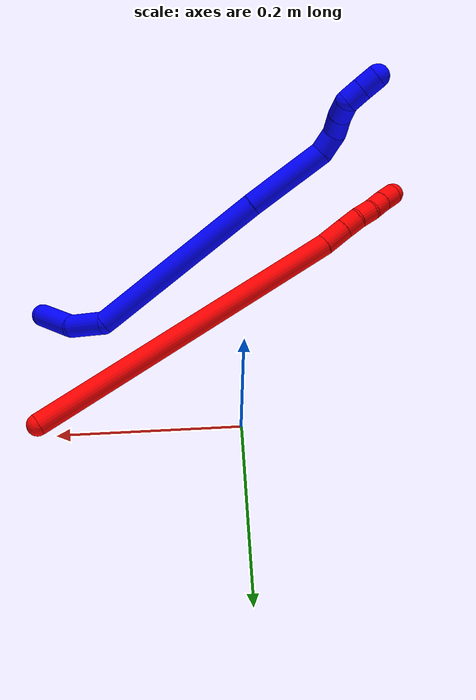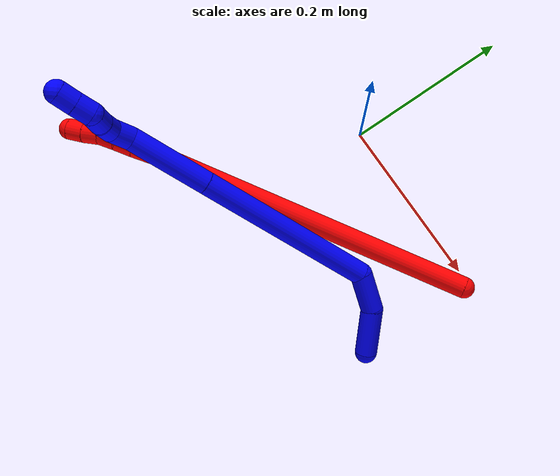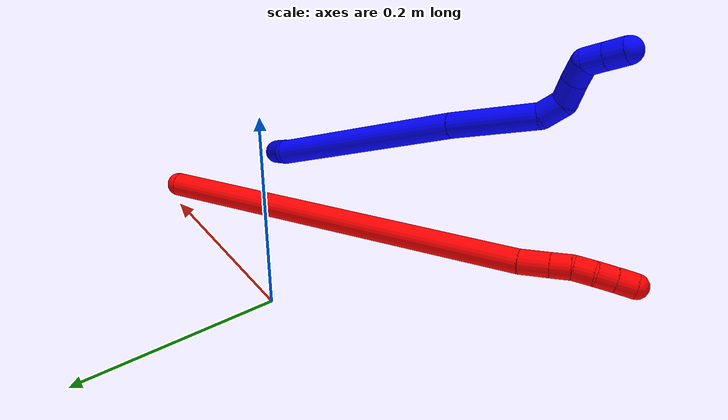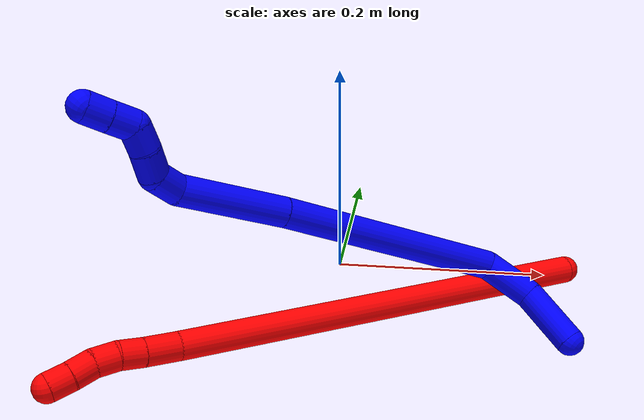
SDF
<sdf version="1.7">
 <world name="default">
  <plugin name="TubeGeneratorPlugin" filename="libtube_generator_plugin.so"/>
  <model name="photoneo_s_sensor">
   <static>1</static>
   <pose>0 0 2 1.57079 1.57079 3.14159</pose>
   <link name="link">
    <inertial><mass>0.1</mass></inertial>
    <sensor name="sensor" type="depth">
     <update_rate>30</update_rate>
     <camera>
      <horizontal_fov>1.22</horizontal_fov>
      <image><width>1920</width><height>1200</height><format>B8G8R8</format></image>
      <clip><near>0.1</near><far>4</far></clip>
      <depth_camera><output>points</output></depth_camera>
     </camera>
     <plugin name="camera_plugin" filename="libgazebo_ros_depth_camera.so">
      <baseline>0.2</baseline>
      <alwaysOn>1</alwaysOn>
      <updateRate>0.0</updateRate>
      <cameraName>camera_ir</cameraName>
      <imageTopicName>/camera/color/image_raw</imageTopicName>
      <cameraInfoTopicName>/camera/color/camera_info</cameraInfoTopicName>
      <depthImageTopicName>/camera/depth/image_raw</depthImageTopicName>
      <depthImageCameraInfoTopicName>/camera/depth/camera_info</depthImageCameraInfoTopicName>
      <pointCloudTopicName>/camera/depth/points</pointCloudTopicName>
      <frameName>fr_optical</frameName>
      <pointCloudCutoff>0.1</pointCloudCutoff>
      <pointCloudCutoffMax>2.0</pointCloudCutoffMax>
      <distortionK1>0</distortionK1>
      <distortionK2>0</distortionK2>
      <distortionK3>0</distortionK3>
      <distortionT1>0</distortionT1>
      <distortionT2>0</distortionT2>
      <CxPrime>0</CxPrime>
      <Cx>0</Cx>
      <Cy>0</Cy>
      <focalLength>0</focalLength>
      <hackBaseline>0</hackBaseline>
     </plugin>
    </sensor>
   </link>
  </model>
  <gravity>0 0 -9.8</gravity>
  <magnetic_field>6e-06 2.3e-05 -4.2e-05</magnetic_field>
  <atmosphere type="adiabatic"/>
  <physics name="default_physics" default="0" type="ode">
   <max_step_size>0.003</max_step_size>
   <real_time_factor>1</real_time_factor>
   <real_time_update_rate>1000</real_time_update_rate>
   <max_contacts>10000</max_contacts>
   <ode>
    <solver>
     <type>quick</type>
     <iters>100</iters>
     <sor>1.3</sor>
     <use_dynamic_moi_rescaling>0</use_dynamic_moi_rescaling>
    </solver>
    <constraints>
     <contact_max_correcting_vel>0</contact_max_correcting_vel>
     <contact_surface_layer>0.001</contact_surface_layer>
     <cfm>0</cfm>
     <erp>0.2</erp>
    </constraints>
   </ode>
  </physics>
  <scene><ambient>0.4 0.4 0.4 1</ambient><background>0.7 0.7 0.7 1</background><shadows>0</shadows></scene>
  <audio><device>default</device></audio>
  <spherical_coordinates>
   <surface_model>EARTH_WGS84</surface_model>
   <latitude_deg>0</latitude_deg>
   <longitude_deg>0</longitude_deg>
   <elevation>0</elevation>
   <heading_deg>0</heading_deg>
  </spherical_coordinates>
  <model name="bin">
   <static>1</static>
   <link name="bottom">
    <collision name="collision-bottom">
     <pose>0 0 -0.01 0 -0 0</pose>
     <geometry><box><size>0.8 0.6 0.02</size></box></geometry>
     <surface>
      <friction><ode><mu>100</mu><mu2>100</mu2></ode></friction>
      <contact><collide_bitmask>65535</collide_bitmask></contact>
     </surface>
    </collision>
   </link>
   <link name="west_wall">
    <collision name="collision-west_wall">
     <pose>-0.41 0 0.1 0 -0 0</pose>
     <geometry><box><size>0.02 0.6 0.2</size></box></geometry>
     <surface>
      <friction><ode><mu>100</mu><mu2>100</mu2></ode></friction>
      <contact><collide_bitmask>65535</collide_bitmask></contact>
     </surface>
    </collision>
   </link>
   <link name="east_wall">
    <collision name="collision-east_wall">
     <pose>0.41 0 0.1 0 -0 0</pose>
     <geometry><box><size>0.02 0.6 0.2</size></box></geometry>
     <surface>
      <friction><ode><mu>100</mu><mu2>100</mu2></ode></friction>
      <contact><collide_bitmask>65535</collide_bitmask></contact>
     </surface>
    </collision>
   </link>
   <link name="south_wall">
    <collision name="collision-south_wall">
     <pose>0 -0.31 0.1 0 -0 0</pose>
     <geometry><box><size>0.8 0.02 0.2</size></box></geometry>
     <surface>
      <friction><ode><mu>100</mu><mu2>100</mu2></ode></friction>
      <contact><collide_bitmask>65535</collide_bitmask></contact>
     </surface>
    </collision>
   </link>
   <link name="north_wall">
    <collision name="collision-north_wall">
     <pose>0 0.31 0.1 0 -0 0</pose>
     <geometry><box><size>0.8 0.02 0.2</size></box></geometry>
     <surface>
      <friction><ode><mu>100</mu><mu2>100</mu2></ode></friction>
      <contact><collide_bitmask>65535</collide_bitmask></contact>
     </surface>
    </collision>
   </link>
  </model>
  <model name="1">
   <static>0</static>
   <link name="1">
    <collision name="collision-cylinder-e_1_1_4">
     <pose>-0.004552 0.004621 -0.025995 -2.96566 -0.170745 1.54072</pose>
     <geometry><cylinder><radius>0.0125</radius><length>0.053584</length></cylinder></geometry>
     <surface>
      <friction><ode><mu>1.16</mu><mu2>1.16</mu2><slip1>0</slip1><slip2>0</slip2></ode></friction>
      <contact><ode><kp>1e+06</kp><kd>1</kd><max_vel>0</max_vel><min_depth>0.001</min_depth></ode></contact>
     </surface>
    </collision>
    <visual name="visual-cylinder-e_1_1_4">
     <pose>-0.004552 0.004621 -0.025995 -2.96566 -0.170745 1.54072</pose>
     <geometry><cylinder><radius>0.0125</radius><length>0.053584</length></cylinder></geometry>
     <material><ambient>0 0 1 1</ambient></material>
    </visual>
    <collision name="collision-cylinder-e_2_4_5">
     <pose>-0.018645 0.006421 -0.071962 3.00124 -0.441781 -2.53485</pose>
     <geometry><cylinder><radius>0.0125</radius><length>0.044625</length></cylinder></geometry>
     <surface>
      <friction><ode><mu>1.16</mu><mu2>1.16</mu2><slip1>0</slip1><slip2>0</slip2></ode></friction>
      <contact><ode><kp>1e+06</kp><kd>1</kd><max_vel>0</max_vel><min_depth>0.001</min_depth></ode></contact>
     </surface>
    </collision>
    <visual name="visual-cylinder-e_2_4_5">
     <pose>-0.018645 0.006421 -0.071962 3.00124 -0.441781 -2.53485</pose>
     <geometry><cylinder><radius>0.0125</radius><length>0.044625</length></cylinder></geometry>
     <material><ambient>0 0 1 1</ambient></material>
    </visual>
    <collision name="collision-cylinder-e_3_5_6">
     <pose>-0.105289 -0.045616 -0.136402 2.30557 -0.860388 -1.60328</pose>
     <geometry><cylinder><radius>0.0125</radius><length>0.203417</length></cylinder></geometry>
     <surface>
      <friction><ode><mu>1.16</mu><mu2>1.16</mu2><slip1>0</slip1><slip2>0</slip2></ode></friction>
      <contact><ode><kp>1e+06</kp><kd>1</kd><max_vel>0</max_vel><min_depth>0.001</min_depth></ode></contact>
     </surface>
    </collision>
    <visual name="visual-cylinder-e_3_5_6">
     <pose>-0.105289 -0.045616 -0.136402 2.30557 -0.860388 -1.60328</pose>
     <geometry><cylinder><radius>0.0125</radius><length>0.203417</length></cylinder></geometry>
     <material><ambient>0 0 1 1</ambient></material>
    </visual>
    <collision name="collision-cylinder-e_4_6_7">
     <pose>-0.215667 -0.118684 -0.200932 2.27005 -0.818036 -1.49929</pose>
     <geometry><cylinder><radius>0.0125</radius><length>0.091184</length></cylinder></geometry>
     <surface>
      <friction><ode><mu>1.16</mu><mu2>1.16</mu2><slip1>0</slip1><slip2>0</slip2></ode></friction>
      <contact><ode><kp>1e+06</kp><kd>1</kd><max_vel>0</max_vel><min_depth>0.001</min_depth></ode></contact>
     </surface>
    </collision>
    <visual name="visual-cylinder-e_4_6_7">
     <pose>-0.215667 -0.118684 -0.200932 2.27005 -0.818036 -1.49929</pose>
     <geometry><cylinder><radius>0.0125</radius><length>0.091184</length></cylinder></geometry>
     <material><ambient>0 0 1 1</ambient></material>
    </visual>
    <collision name="collision-cylinder-e_5_7_8">
     <pose>-0.260204 -0.145079 -0.22432 2.48937 -1.21504 -2.23612</pose>
     <geometry><cylinder><radius>0.0125</radius><length>0.024032</length></cylinder></geometry>
     <surface>
      <friction><ode><mu>1.16</mu><mu2>1.16</mu2><slip1>0</slip1><slip2>0</slip2></ode></friction>
      <contact><ode><kp>1e+06</kp><kd>1</kd><max_vel>0</max_vel><min_depth>0.001</min_depth></ode></contact>
     </surface>
    </collision>
    <visual name="visual-cylinder-e_5_7_8">
     <pose>-0.260204 -0.145079 -0.22432 2.48937 -1.21504 -2.23612</pose>
     <geometry><cylinder><radius>0.0125</radius><length>0.024032</length></cylinder></geometry>
     <material><ambient>0 0 1 1</ambient></material>
    </visual>
    <collision name="collision-cylinder-e_6_8_9">
     <pose>-0.281611 -0.143392 -0.230755 -2.20493 -1.09339 1.75458</pose>
     <geometry><cylinder><radius>0.0125</radius><length>0.022843</length></cylinder></geometry>
     <surface>
      <friction><ode><mu>1.16</mu><mu2>1.16</mu2><slip1>0</slip1><slip2>0</slip2></ode></friction>
      <contact><ode><kp>1e+06</kp><kd>1</kd><max_vel>0</max_vel><min_depth>0.001</min_depth></ode></contact>
     </surface>
    </collision>
    <visual name="visual-cylinder-e_6_8_9">
     <pose>-0.281611 -0.143392 -0.230755 -2.20493 -1.09339 1.75458</pose>
     <geometry><cylinder><radius>0.0125</radius><length>0.022843</length></cylinder></geometry>
     <material><ambient>0 0 1 1</ambient></material>
    </visual>
    <collision name="collision-cylinder-e_7_9_10">
     <pose>-0.300407 -0.135824 -0.237909 -2.45131 -1.02575 2.00518</pose>
     <geometry><cylinder><radius>0.0125</radius><length>0.020235</length></cylinder></geometry>
     <surface>
      <friction><ode><mu>1.16</mu><mu2>1.16</mu2><slip1>0</slip1><slip2>0</slip2></ode></friction>
      <contact><ode><kp>1e+06</kp><kd>1</kd><max_vel>0</max_vel><min_depth>0.001</min_depth></ode></contact>
     </surface>
    </collision>
    <visual name="visual-cylinder-e_7_9_10">
     <pose>-0.300407 -0.135824 -0.237909 -2.45131 -1.02575 2.00518</pose>
     <geometry><cylinder><radius>0.0125</radius><length>0.020235</length></cylinder></geometry>
     <material><ambient>0 0 1 1</ambient></material>
    </visual>
    <collision name="collision-cylinder-e_8_10_11">
     <pose>-0.317013 -0.136672 -0.246386 2.3845 -0.916746 -1.78474</pose>
     <geometry><cylinder><radius>0.0125</radius><length>0.020045</length></cylinder></geometry>
     <surface>
      <friction><ode><mu>1.16</mu><mu2>1.16</mu2><slip1>0</slip1><slip2>0</slip2></ode></friction>
      <contact><ode><kp>1e+06</kp><kd>1</kd><max_vel>0</max_vel><min_depth>0.001</min_depth></ode></contact>
     </surface>
    </collision>
    <visual name="visual-cylinder-e_8_10_11">
     <pose>-0.317013 -0.136672 -0.246386 2.3845 -0.916746 -1.78474</pose>
     <geometry><cylinder><radius>0.0125</radius><length>0.020045</length></cylinder></geometry>
     <material><ambient>0 0 1 1</ambient></material>
    </visual>
    <collision name="collision-cylinder-e_9_11_2">
     <pose>-0.332823 -0.144908 -0.255535 2.43241 -0.90143 -1.83545</pose>
     <geometry><cylinder><radius>0.0125</radius><length>0.020036</length></cylinder></geometry>
     <surface>
      <friction><ode><mu>1.16</mu><mu2>1.16</mu2><slip1>0</slip1><slip2>0</slip2></ode></friction>
      <contact><ode><kp>1e+06</kp><kd>1</kd><max_vel>0</max_vel><min_depth>0.001</min_depth></ode></contact>
     </surface>
    </collision>
    <visual name="visual-cylinder-e_9_11_2">
     <pose>-0.332823 -0.144908 -0.255535 2.43241 -0.90143 -1.83545</pose>
     <geometry><cylinder><radius>0.0125</radius><length>0.020036</length></cylinder></geometry>
     <material><ambient>0 0 1 1</ambient></material>
    </visual>
    <collision name="collision-sphere-2">
     <pose>-0.340679 -0.148956 -0.260252 0 -0 0</pose>
     <geometry><sphere><radius>0.0125</radius></sphere></geometry>
     <surface>
      <friction><ode><mu>1.16</mu><mu2>1.16</mu2><slip1>0</slip1><slip2>0</slip2></ode></friction>
      <contact><ode><kp>1e+06</kp><kd>1</kd><max_vel>0</max_vel><min_depth>0.001</min_depth></ode></contact>
     </surface>
    </collision>
    <visual name="visual-sphere-2">
     <pose>-0.340679 -0.148956 -0.260252 0 -0 0</pose>
     <geometry><sphere><radius>0.0125</radius></sphere></geometry>
     <material><ambient>0 0 1 1</ambient></material>
    </visual>
    <collision name="collision-sphere-11">
     <pose>-0.324967 -0.14086 -0.250818 0 -0 0</pose>
     <geometry><sphere><radius>0.0125</radius></sphere></geometry>
     <surface>
      <friction><ode><mu>1.16</mu><mu2>1.16</mu2><slip1>0</slip1><slip2>0</slip2></ode></friction>
      <contact><ode><kp>1e+06</kp><kd>1</kd><max_vel>0</max_vel><min_depth>0.001</min_depth></ode></contact>
     </surface>
    </collision>
    <visual name="visual-sphere-11">
     <pose>-0.324967 -0.14086 -0.250818 0 -0 0</pose>
     <geometry><sphere><radius>0.0125</radius></sphere></geometry>
     <material><ambient>0 0 1 1</ambient></material>
    </visual>
    <collision name="collision-sphere-10">
     <pose>-0.309058 -0.132484 -0.241953 0 -0 0</pose>
     <geometry><sphere><radius>0.0125</radius></sphere></geometry>
     <surface>
      <friction><ode><mu>1.16</mu><mu2>1.16</mu2><slip1>0</slip1><slip2>0</slip2></ode></friction>
      <contact><ode><kp>1e+06</kp><kd>1</kd><max_vel>0</max_vel><min_depth>0.001</min_depth></ode></contact>
     </surface>
    </collision>
    <visual name="visual-sphere-10">
     <pose>-0.309058 -0.132484 -0.241953 0 -0 0</pose>
     <geometry><sphere><radius>0.0125</radius></sphere></geometry>
     <material><ambient>0 0 1 1</ambient></material>
    </visual>
    <collision name="collision-sphere-9">
     <pose>-0.291756 -0.139164 -0.233864 0 -0 0</pose>
     <geometry><sphere><radius>0.0125</radius></sphere></geometry>
     <surface>
      <friction><ode><mu>1.16</mu><mu2>1.16</mu2><slip1>0</slip1><slip2>0</slip2></ode></friction>
      <contact><ode><kp>1e+06</kp><kd>1</kd><max_vel>0</max_vel><min_depth>0.001</min_depth></ode></contact>
     </surface>
    </collision>
    <visual name="visual-sphere-9">
     <pose>-0.291756 -0.139164 -0.233864 0 -0 0</pose>
     <geometry><sphere><radius>0.0125</radius></sphere></geometry>
     <material><ambient>0 0 1 1</ambient></material>
    </visual>
    <collision name="collision-sphere-4">
     <pose>-0.009105 0.009242 -0.05199 0 -0 0</pose>
     <geometry><sphere><radius>0.0125</radius></sphere></geometry>
     <surface>
      <friction><ode><mu>1.16</mu><mu2>1.16</mu2><slip1>0</slip1><slip2>0</slip2></ode></friction>
      <contact><ode><kp>1e+06</kp><kd>1</kd><max_vel>0</max_vel><min_depth>0.001</min_depth></ode></contact>
     </surface>
    </collision>
    <visual name="visual-sphere-4">
     <pose>-0.009105 0.009242 -0.05199 0 -0 0</pose>
     <geometry><sphere><radius>0.0125</radius></sphere></geometry>
     <material><ambient>0 0 1 1</ambient></material>
    </visual>
    <collision name="collision-sphere-1">
     <geometry><sphere><radius>0.0125</radius></sphere></geometry>
     <surface>
      <friction><ode><mu>1.16</mu><mu2>1.16</mu2><slip1>0</slip1><slip2>0</slip2></ode></friction>
      <contact><ode><kp>1e+06</kp><kd>1</kd><max_vel>0</max_vel><min_depth>0.001</min_depth></ode></contact>
     </surface>
    </collision>
    <visual name="visual-sphere-1">
     <geometry><sphere><radius>0.0125</radius></sphere></geometry>
     <material><ambient>0 0 1 1</ambient></material>
    </visual>
    <collision name="collision-sphere-8">
     <pose>-0.271467 -0.147619 -0.227646 0 -0 0</pose>
     <geometry><sphere><radius>0.0125</radius></sphere></geometry>
     <surface>
      <friction><ode><mu>1.16</mu><mu2>1.16</mu2><slip1>0</slip1><slip2>0</slip2></ode></friction>
      <contact><ode><kp>1e+06</kp><kd>1</kd><max_vel>0</max_vel><min_depth>0.001</min_depth></ode></contact>
     </surface>
    </collision>
    <visual name="visual-sphere-8">
     <pose>-0.271467 -0.147619 -0.227646 0 -0 0</pose>
     <geometry><sphere><radius>0.0125</radius></sphere></geometry>
     <material><ambient>0 0 1 1</ambient></material>
    </visual>
    <collision name="collision-sphere-5">
     <pose>-0.028184 0.003599 -0.091934 0 -0 0</pose>
     <geometry><sphere><radius>0.0125</radius></sphere></geometry>
     <surface>
      <friction><ode><mu>1.16</mu><mu2>1.16</mu2><slip1>0</slip1><slip2>0</slip2></ode></friction>
      <contact><ode><kp>1e+06</kp><kd>1</kd><max_vel>0</max_vel><min_depth>0.001</min_depth></ode></contact>
     </surface>
    </collision>
    <visual name="visual-sphere-5">
     <pose>-0.028184 0.003599 -0.091934 0 -0 0</pose>
     <geometry><sphere><radius>0.0125</radius></sphere></geometry>
     <material><ambient>0 0 1 1</ambient></material>
    </visual>
    <collision name="collision-sphere-6">
     <pose>-0.182394 -0.09483 -0.18087 0 -0 0</pose>
     <geometry><sphere><radius>0.0125</radius></sphere></geometry>
     <surface>
      <friction><ode><mu>1.16</mu><mu2>1.16</mu2><slip1>0</slip1><slip2>0</slip2></ode></friction>
      <contact><ode><kp>1e+06</kp><kd>1</kd><max_vel>0</max_vel><min_depth>0.001</min_depth></ode></contact>
     </surface>
    </collision>
    <visual name="visual-sphere-6">
     <pose>-0.182394 -0.09483 -0.18087 0 -0 0</pose>
     <geometry><sphere><radius>0.0125</radius></sphere></geometry>
     <material><ambient>0 0 1 1</ambient></material>
    </visual>
    <collision name="collision-sphere-7">
     <pose>-0.24894 -0.142539 -0.220994 0 -0 0</pose>
     <geometry><sphere><radius>0.0125</radius></sphere></geometry>
     <surface>
      <friction><ode><mu>1.16</mu><mu2>1.16</mu2><slip1>0</slip1><slip2>0</slip2></ode></friction>
      <contact><ode><kp>1e+06</kp><kd>1</kd><max_vel>0</max_vel><min_depth>0.001</min_depth></ode></contact>
     </surface>
    </collision>
    <visual name="visual-sphere-7">
     <pose>-0.24894 -0.142539 -0.220994 0 -0 0</pose>
     <geometry><sphere><radius>0.0125</radius></sphere></geometry>
     <material><ambient>0 0 1 1</ambient></material>
    </visual>
    <inertial>
     <pose>-0.147893 -0.069441 -0.152414 0 -0 0</pose>
     <mass>0.5</mass>
     <inertia>
      <ixx>-0.000545</ixx>
      <ixy>0</ixy>
      <ixz>0</ixz>
      <iyy>-4.7e-05</iyy>
      <iyz>0</iyz>
      <izz>0.000957</izz>
     </inertia>
    </inertial>
   </link>
   <pose>0.21498 -0.144832 0.011495 1.99246 0.853196 1.20558</pose>
  </model>
  <model name="2">
   <static>0</static>
   <link name="2">
    <collision name="collision-cylinder-e_1_1_4">
     <pose>-0.168298 -0.09236 0.024251 1.31402 -1.0547 -0.844364</pose>
     <geometry><cylinder><radius>0.0125</radius><length>0.387002</length></cylinder></geometry>
     <surface>
      <friction><ode><mu>1.16</mu><mu2>1.16</mu2><slip1>0</slip1><slip2>0</slip2></ode></friction>
      <contact><ode><kp>1e+06</kp><kd>1</kd><max_vel>0</max_vel><min_depth>0.001</min_depth></ode></contact>
     </surface>
    </collision>
    <visual name="visual-cylinder-e_1_1_4">
     <pose>-0.168298 -0.09236 0.024251 1.31402 -1.0547 -0.844364</pose>
     <geometry><cylinder><radius>0.0125</radius><length>0.387002</length></cylinder></geometry>
     <material><ambient>1 0 0 1</ambient></material>
    </visual>
    <collision name="collision-cylinder-e_2_4_5">
     <pose>-0.349083 -0.193282 0.05123 1.26226 -0.947053 -0.716651</pose>
     <geometry><cylinder><radius>0.0125</radius><length>0.03077</length></cylinder></geometry>
     <surface>
      <friction><ode><mu>1.16</mu><mu2>1.16</mu2><slip1>0</slip1><slip2>0</slip2></ode></friction>
      <contact><ode><kp>1e+06</kp><kd>1</kd><max_vel>0</max_vel><min_depth>0.001</min_depth></ode></contact>
     </surface>
    </collision>
    <visual name="visual-cylinder-e_2_4_5">
     <pose>-0.349083 -0.193282 0.05123 1.26226 -0.947053 -0.716651</pose>
     <geometry><cylinder><radius>0.0125</radius><length>0.03077</length></cylinder></geometry>
     <material><ambient>1 0 0 1</ambient></material>
    </visual>
    <collision name="collision-cylinder-e_3_5_6">
     <pose>-0.370241 -0.207489 0.056248 1.18565 -0.958289 -0.673314</pose>
     <geometry><cylinder><radius>0.0125</radius><length>0.021191</length></cylinder></geometry>
     <surface>
      <friction><ode><mu>1.16</mu><mu2>1.16</mu2><slip1>0</slip1><slip2>0</slip2></ode></friction>
      <contact><ode><kp>1e+06</kp><kd>1</kd><max_vel>0</max_vel><min_depth>0.001</min_depth></ode></contact>
     </surface>
    </collision>
    <visual name="visual-cylinder-e_3_5_6">
     <pose>-0.370241 -0.207489 0.056248 1.18565 -0.958289 -0.673314</pose>
     <geometry><cylinder><radius>0.0125</radius><length>0.021191</length></cylinder></geometry>
     <material><ambient>1 0 0 1</ambient></material>
    </visual>
    <collision name="collision-cylinder-e_4_6_7">
     <pose>-0.387846 -0.21827 0.058736 1.5319 -1.04883 -1.01544</pose>
     <geometry><cylinder><radius>0.0125</radius><length>0.020618</length></cylinder></geometry>
     <surface>
      <friction><ode><mu>1.16</mu><mu2>1.16</mu2><slip1>0</slip1><slip2>0</slip2></ode></friction>
      <contact><ode><kp>1e+06</kp><kd>1</kd><max_vel>0</max_vel><min_depth>0.001</min_depth></ode></contact>
     </surface>
    </collision>
    <visual name="visual-cylinder-e_4_6_7">
     <pose>-0.387846 -0.21827 0.058736 1.5319 -1.04883 -1.01544</pose>
     <geometry><cylinder><radius>0.0125</radius><length>0.020618</length></cylinder></geometry>
     <material><ambient>1 0 0 1</ambient></material>
    </visual>
    <collision name="collision-cylinder-e_5_7_8">
     <pose>-0.404703 -0.229591 0.057257 1.8359 -0.890534 -1.11587</pose>
     <geometry><cylinder><radius>0.0125</radius><length>0.020377</length></cylinder></geometry>
     <surface>
      <friction><ode><mu>1.16</mu><mu2>1.16</mu2><slip1>0</slip1><slip2>0</slip2></ode></friction>
      <contact><ode><kp>1e+06</kp><kd>1</kd><max_vel>0</max_vel><min_depth>0.001</min_depth></ode></contact>
     </surface>
    </collision>
    <visual name="visual-cylinder-e_5_7_8">
     <pose>-0.404703 -0.229591 0.057257 1.8359 -0.890534 -1.11587</pose>
     <geometry><cylinder><radius>0.0125</radius><length>0.020377</length></cylinder></geometry>
     <material><ambient>1 0 0 1</ambient></material>
    </visual>
    <collision name="collision-cylinder-e_6_8_2">
     <pose>-0.420871 -0.24135 0.054425 1.77475 -0.966725 -1.14509</pose>
     <geometry><cylinder><radius>0.0125</radius><length>0.020042</length></cylinder></geometry>
     <surface>
      <friction><ode><mu>1.16</mu><mu2>1.16</mu2><slip1>0</slip1><slip2>0</slip2></ode></friction>
      <contact><ode><kp>1e+06</kp><kd>1</kd><max_vel>0</max_vel><min_depth>0.001</min_depth></ode></contact>
     </surface>
    </collision>
    <visual name="visual-cylinder-e_6_8_2">
     <pose>-0.420871 -0.24135 0.054425 1.77475 -0.966725 -1.14509</pose>
     <geometry><cylinder><radius>0.0125</radius><length>0.020042</length></cylinder></geometry>
     <material><ambient>1 0 0 1</ambient></material>
    </visual>
    <collision name="collision-sphere-2">
     <pose>-0.429119 -0.246924 0.053272 0 -0 0</pose>
     <geometry><sphere><radius>0.0125</radius></sphere></geometry>
     <surface>
      <friction><ode><mu>1.16</mu><mu2>1.16</mu2><slip1>0</slip1><slip2>0</slip2></ode></friction>
      <contact><ode><kp>1e+06</kp><kd>1</kd><max_vel>0</max_vel><min_depth>0.001</min_depth></ode></contact>
     </surface>
    </collision>
    <visual name="visual-sphere-2">
     <pose>-0.429119 -0.246924 0.053272 0 -0 0</pose>
     <geometry><sphere><radius>0.0125</radius></sphere></geometry>
     <material><ambient>1 0 0 1</ambient></material>
    </visual>
    <collision name="collision-sphere-4">
     <pose>-0.336595 -0.184721 0.048502 0 -0 0</pose>
     <geometry><sphere><radius>0.0125</radius></sphere></geometry>
     <surface>
      <friction><ode><mu>1.16</mu><mu2>1.16</mu2><slip1>0</slip1><slip2>0</slip2></ode></friction>
      <contact><ode><kp>1e+06</kp><kd>1</kd><max_vel>0</max_vel><min_depth>0.001</min_depth></ode></contact>
     </surface>
    </collision>
    <visual name="visual-sphere-4">
     <pose>-0.336595 -0.184721 0.048502 0 -0 0</pose>
     <geometry><sphere><radius>0.0125</radius></sphere></geometry>
     <material><ambient>1 0 0 1</ambient></material>
    </visual>
    <collision name="collision-sphere-1">
     <geometry><sphere><radius>0.0125</radius></sphere></geometry>
     <surface>
      <friction><ode><mu>1.16</mu><mu2>1.16</mu2><slip1>0</slip1><slip2>0</slip2></ode></friction>
      <contact><ode><kp>1e+06</kp><kd>1</kd><max_vel>0</max_vel><min_depth>0.001</min_depth></ode></contact>
     </surface>
    </collision>
    <visual name="visual-sphere-1">
     <geometry><sphere><radius>0.0125</radius></sphere></geometry>
     <material><ambient>1 0 0 1</ambient></material>
    </visual>
    <collision name="collision-sphere-8">
     <pose>-0.412623 -0.235776 0.055578 0 -0 0</pose>
     <geometry><sphere><radius>0.0125</radius></sphere></geometry>
     <surface>
      <friction><ode><mu>1.16</mu><mu2>1.16</mu2><slip1>0</slip1><slip2>0</slip2></ode></friction>
      <contact><ode><kp>1e+06</kp><kd>1</kd><max_vel>0</max_vel><min_depth>0.001</min_depth></ode></contact>
     </surface>
    </collision>
    <visual name="visual-sphere-8">
     <pose>-0.412623 -0.235776 0.055578 0 -0 0</pose>
     <geometry><sphere><radius>0.0125</radius></sphere></geometry>
     <material><ambient>1 0 0 1</ambient></material>
    </visual>
    <collision name="collision-sphere-5">
     <pose>-0.361571 -0.201844 0.053959 0 -0 0</pose>
     <geometry><sphere><radius>0.0125</radius></sphere></geometry>
     <surface>
      <friction><ode><mu>1.16</mu><mu2>1.16</mu2><slip1>0</slip1><slip2>0</slip2></ode></friction>
      <contact><ode><kp>1e+06</kp><kd>1</kd><max_vel>0</max_vel><min_depth>0.001</min_depth></ode></contact>
     </surface>
    </collision>
    <visual name="visual-sphere-5">
     <pose>-0.361571 -0.201844 0.053959 0 -0 0</pose>
     <geometry><sphere><radius>0.0125</radius></sphere></geometry>
     <material><ambient>1 0 0 1</ambient></material>
    </visual>
    <collision name="collision-sphere-6">
     <pose>-0.37891 -0.213134 0.058536 0 -0 0</pose>
     <geometry><sphere><radius>0.0125</radius></sphere></geometry>
     <surface>
      <friction><ode><mu>1.16</mu><mu2>1.16</mu2><slip1>0</slip1><slip2>0</slip2></ode></friction>
      <contact><ode><kp>1e+06</kp><kd>1</kd><max_vel>0</max_vel><min_depth>0.001</min_depth></ode></contact>
     </surface>
    </collision>
    <visual name="visual-sphere-6">
     <pose>-0.37891 -0.213134 0.058536 0 -0 0</pose>
     <geometry><sphere><radius>0.0125</radius></sphere></geometry>
     <material><ambient>1 0 0 1</ambient></material>
    </visual>
    <collision name="collision-sphere-7">
     <pose>-0.396782 -0.223406 0.058936 0 -0 0</pose>
     <geometry><sphere><radius>0.0125</radius></sphere></geometry>
     <surface>
      <friction><ode><mu>1.16</mu><mu2>1.16</mu2><slip1>0</slip1><slip2>0</slip2></ode></friction>
      <contact><ode><kp>1e+06</kp><kd>1</kd><max_vel>0</max_vel><min_depth>0.001</min_depth></ode></contact>
     </surface>
    </collision>
    <visual name="visual-sphere-7">
     <pose>-0.396782 -0.223406 0.058936 0 -0 0</pose>
     <geometry><sphere><radius>0.0125</radius></sphere></geometry>
     <material><ambient>1 0 0 1</ambient></material>
    </visual>
    <inertial>
     <pose>-0.216794 -0.120207 0.031244 0 -0 0</pose>
     <mass>0.5</mass>
     <inertia>
      <ixx>-0.000234</ixx>
      <ixy>0</ixy>
      <ixz>0</ixz>
      <iyy>0.00206</iyy>
      <iyz>0</iyz>
      <izz>0.006544</izz>
     </inertia>
    </inertial>
   </link>
   <pose>0.219011 -0.008968 0.012105 -0.137496 -0.179993 0.084293</pose>
  </model>
 </world>
</sdf>
